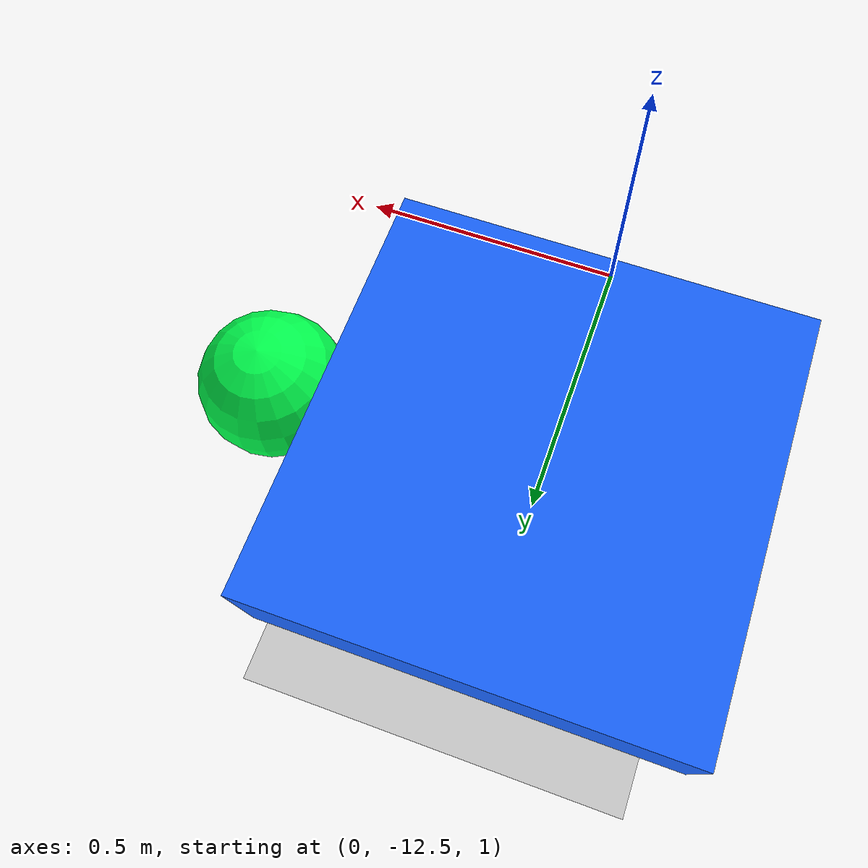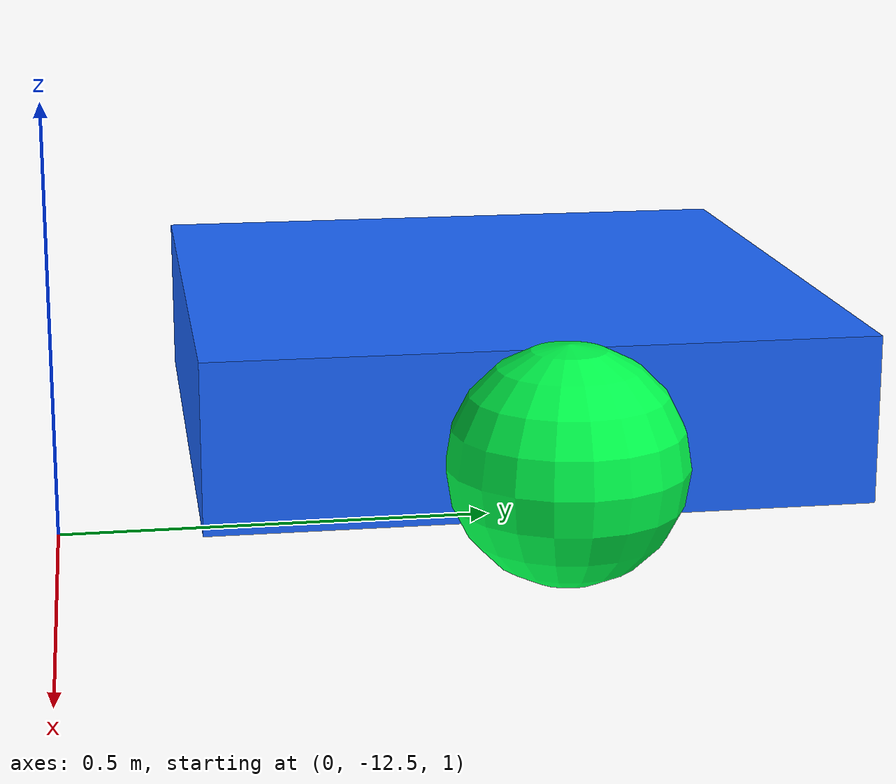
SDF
<?xml version="1.0" ?>
<sdf version="1.6">
  <world name="p11_lite_visual_empty">
    <include>
      <uri>model://sun</uri>
    </include>
    <include>
      <uri>model://ground_plane</uri>
    </include>
    <model name="p11_lite_visual_uav_placeholder">
      <pose>0 -12 1.2 0 0 0</pose>
      <static>true</static>
      <link name="body">
        <visual name="body_visual">
          <geometry>
            <box>
              <size>0.7 0.7 0.18</size>
            </box>
          </geometry>
          <material>
            <ambient>0.1 0.4 1.0 1</ambient>
            <diffuse>0.1 0.4 1.0 1</diffuse>
          </material>
        </visual>
        <visual name="front_visual">
          <pose>0.45 0 0 0 0 0</pose>
          <geometry>
            <sphere>
              <radius>0.12</radius>
            </sphere>
          </geometry>
          <material>
            <ambient>0.0 1.0 0.3 1</ambient>
            <diffuse>0.0 1.0 0.3 1</diffuse>
          </material>
        </visual>
      </link>
    </model>
  </world>
</sdf>
